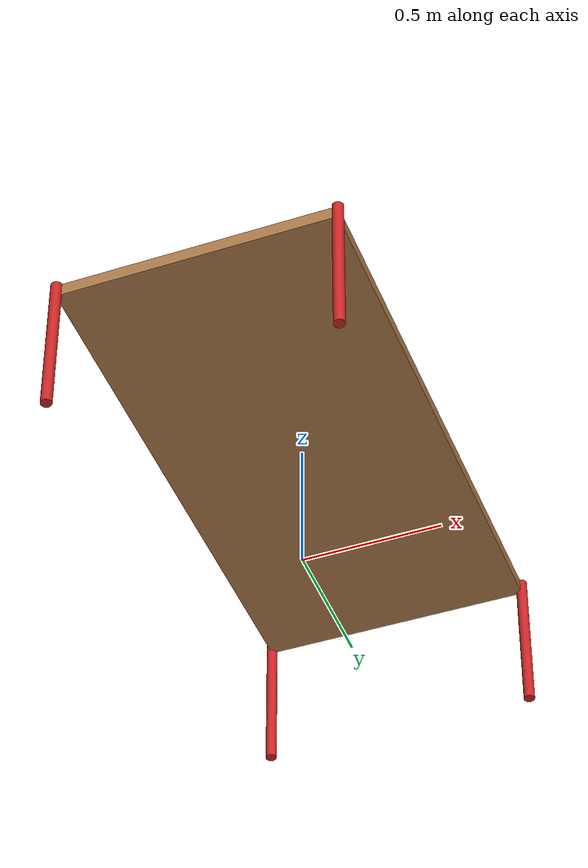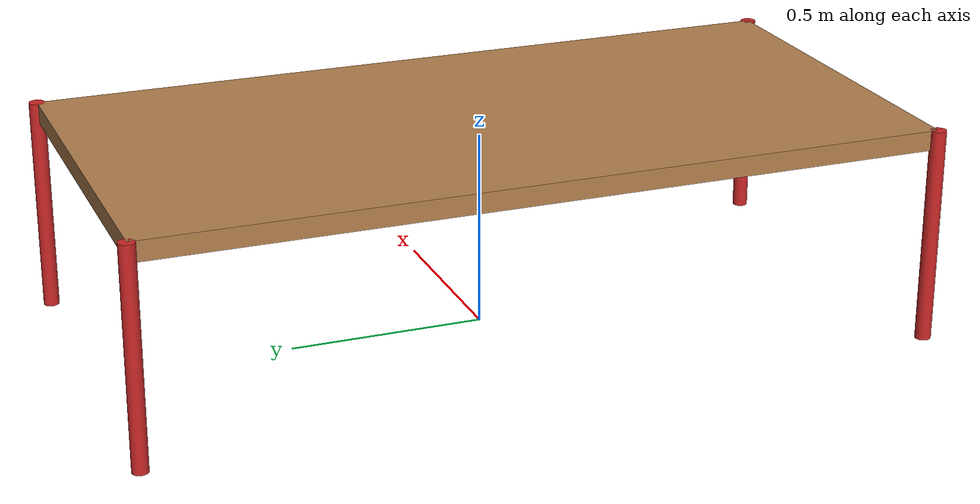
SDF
<sdf version='1.4'>
    <model name='long_table'>
      <link name='table_top_link'>
        <pose>0 0 0 0 -0 0</pose>
        <inertial>
          <pose>0 0 0.325 0 -0 0</pose>
          <mass>5</mass>
          <inertia>
            <ixx>5.45</ixx>
            <ixy>0</ixy>
            <ixz>0</ixz>
            <iyy>2.45</iyy>
            <iyz>0</iyz>
            <izz>6.04</izz>
          </inertia>
        </inertial>
        <collision name='table_top_link_collision'>
          <pose>0 0 0.525 0 -0 0</pose>
          <geometry>
            <box>
              <size>1 2 0.05</size>
            </box>
          </geometry>
          <surface>
            <contact>
              <ode>
                <kp>1e+06</kp>
                <kd>1</kd>
              </ode>
            </contact>
            <friction>
              <ode>
                <mu>50</mu>
                <mu2>50</mu2>
              </ode>
            </friction>
            <bounce/>
          </surface>
          <max_contacts>10</max_contacts>
        </collision>
        <collision name='table_top_link_collision_leg1_link'>
          <pose>0.5 1 0.275 0 -0 0</pose>
          <geometry>
            <cylinder>
              <length>0.55</length>
              <radius>0.02</radius>
            </cylinder>
          </geometry>
          <surface>
            <contact>
              <ode>
                <kp>1e+06</kp>
                <kd>1</kd>
              </ode>
            </contact>
            <friction>
              <ode>
                <mu>50</mu>
                <mu2>50</mu2>
              </ode>
            </friction>
            <bounce/>
          </surface>
          <surface>
            <contact>
              <ode>
                <kp>1e+07</kp>
                <kd>1</kd>
              </ode>
            </contact>
            <friction>
              <ode>
                <mu>1000</mu>
                <mu2>1000</mu2>
              </ode>
            </friction>
          </surface>
          <max_contacts>10</max_contacts>
        </collision>
        <collision name='table_top_link_collision_leg2_link'>
          <pose>-0.5 1 0.275 0 -0 0</pose>
          <geometry>
            <cylinder>
              <length>0.55</length>
              <radius>0.02</radius>
            </cylinder>
          </geometry>
          <surface>
            <contact>
              <ode>
                <kp>1e+06</kp>
                <kd>1</kd>
              </ode>
            </contact>
            <friction>
              <ode>
                <mu>50</mu>
                <mu2>50</mu2>
              </ode>
            </friction>
            <bounce/>
          </surface>
          <surface>
            <contact>
              <ode>
                <kp>1e+07</kp>
                <kd>1</kd>
              </ode>
            </contact>
            <friction>
              <ode>
                <mu>1000</mu>
                <mu2>1000</mu2>
              </ode>
            </friction>
          </surface>
          <max_contacts>10</max_contacts>
        </collision>
        <collision name='table_top_link_collision_leg3_link'>
          <pose>0.5 -1 0.275 0 -0 0</pose>
          <geometry>
            <cylinder>
              <length>0.55</length>
              <radius>0.02</radius>
            </cylinder>
          </geometry>
          <surface>
            <contact>
              <ode>
                <kp>1e+06</kp>
                <kd>1</kd>
              </ode>
            </contact>
            <friction>
              <ode>
                <mu>50</mu>
                <mu2>50</mu2>
              </ode>
            </friction>
            <bounce/>
          </surface>
          <surface>
            <contact>
              <ode>
                <kp>1e+07</kp>
                <kd>1</kd>
              </ode>
            </contact>
            <friction>
              <ode>
                <mu>1000</mu>
                <mu2>1000</mu2>
              </ode>
            </friction>
          </surface>
          <max_contacts>10</max_contacts>
        </collision>
        <collision name='table_top_link_collision_leg4_link'>
          <pose>-0.5 -1 0.275 0 -0 0</pose>
          <geometry>
            <cylinder>
              <length>0.55</length>
              <radius>0.02</radius>
            </cylinder>
          </geometry>
          <surface>
            <contact>
              <ode>
                <kp>1e+06</kp>
                <kd>1</kd>
              </ode>
            </contact>
            <friction>
              <ode>
                <mu>50</mu>
                <mu2>50</mu2>
              </ode>
            </friction>
            <bounce/>
          </surface>
          <surface>
            <contact>
              <ode>
                <kp>1e+07</kp>
                <kd>1</kd>
              </ode>
            </contact>
            <friction>
              <ode>
                <mu>1000</mu>
                <mu2>1000</mu2>
              </ode>
            </friction>
          </surface>
          <max_contacts>10</max_contacts>
        </collision>
        <visual name='table_top_link_visual'>
          <pose>0 0 0.525 0 -0 0</pose>
          <geometry>
            <box>
              <size>1 2 0.05</size>
            </box>
          </geometry>
          <material>
            <script>
              <name>Gazebo/Wood</name>
              <uri>__default__</uri>
            </script>
          </material>
        </visual>
        <visual name='table_top_link_visual_leg1_link'>
          <pose>0.5 1 0.275 0 -0 0</pose>
          <geometry>
            <cylinder>
              <length>0.55</length>
              <radius>0.02</radius>
            </cylinder>
          </geometry>
          <material>
            <script>
              <name>Gazebo/Red</name>
              <uri>__default__</uri>
            </script>
          </material>
        </visual>
        <visual name='table_top_link_visual_leg2_link'>
          <pose>-0.5 1 0.275 0 -0 0</pose>
          <geometry>
            <cylinder>
              <length>0.55</length>
              <radius>0.02</radius>
            </cylinder>
          </geometry>
          <material>
            <script>
              <name>Gazebo/Red</name>
              <uri>__default__</uri>
            </script>
          </material>
        </visual>
        <visual name='table_top_link_visual_leg3_link'>
          <pose>0.5 -1 0.275 0 -0 0</pose>
          <geometry>
            <cylinder>
              <length>0.55</length>
              <radius>0.02</radius>
            </cylinder>
          </geometry>
          <material>
            <script>
              <name>Gazebo/Red</name>
              <uri>__default__</uri>
            </script>
          </material>
        </visual>
        <visual name='table_top_link_visual_leg4_link'>
          <pose>-0.5 -1 0.275 0 -0 0</pose>
          <geometry>
            <cylinder>
              <length>0.55</length>
              <radius>0.02</radius>
            </cylinder>
          </geometry>
          <material>
            <script>
              <name>Gazebo/Red</name>
              <uri>__default__</uri>
            </script>
          </material>
        </visual>
        <velocity_decay>
          <linear>0</linear>
          <angular>0</angular>
        </velocity_decay>
        <velocity_decay>
          <linear>0</linear>
          <angular>0</angular>
        </velocity_decay>
        <velocity_decay>
          <linear>0</linear>
          <angular>0</angular>
        </velocity_decay>
        <velocity_decay>
          <linear>0</linear>
          <angular>0</angular>
        </velocity_decay>
        <gravity>1</gravity>
        <velocity_decay>
          <linear>0</linear>
          <angular>0</angular>
        </velocity_decay>
        <self_collide>1</self_collide>
        <kinematic>0</kinematic>
      </link>
      <static>1</static>
      <pose>0 0 0 0 -0 0</pose>
    </model>
</sdf>
